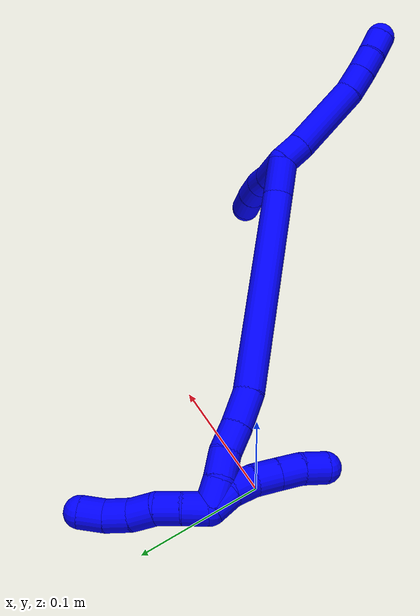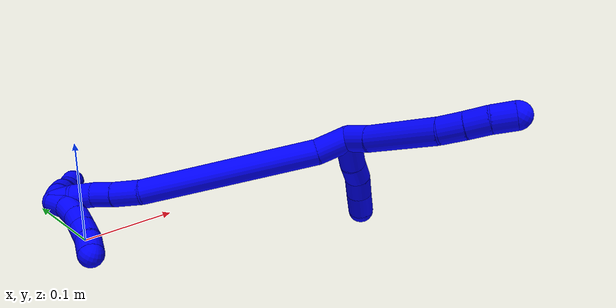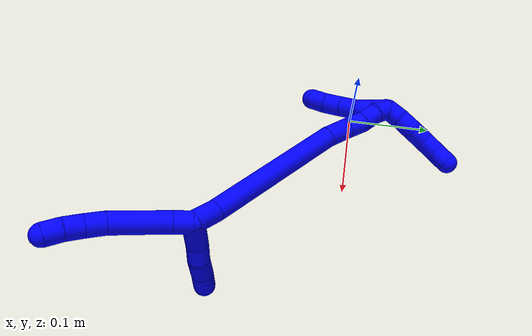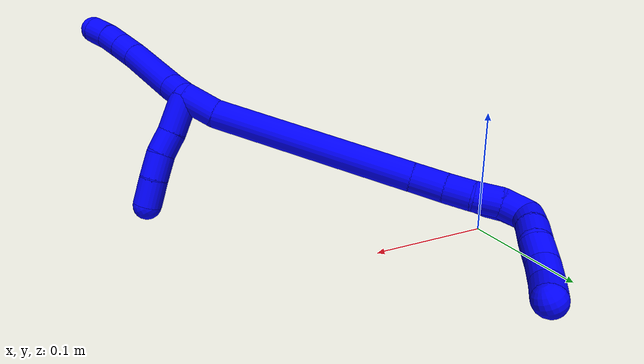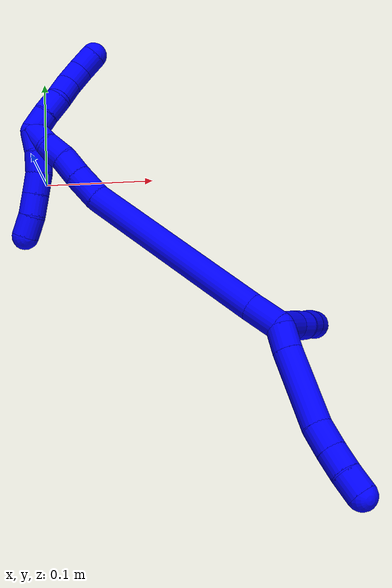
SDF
<sdf version="1.7">
 <world name="default">
  <model name="1">
   <static>0</static>
   <link name="1">
    <collision name="collision-cylinder-e_1_2_8">
     <pose>0.001305 -0.009234 0.005534 1.03089 0.120667 0.068418</pose>
     <geometry><cylinder><radius>0.0125</radius><length>0.021689</length></cylinder></geometry>
     <surface>
      <friction><ode><mu>1.16</mu><mu2>1.16</mu2><slip1>0</slip1><slip2>0</slip2></ode></friction>
      <contact><ode><kp>1e+06</kp><kd>1</kd><max_vel>0</max_vel><min_depth>0.001</min_depth></ode></contact>
     </surface>
    </collision>
    <visual name="visual-cylinder-e_1_2_8">
     <pose>0.001305 -0.009234 0.005534 1.03089 0.120667 0.068418</pose>
     <geometry><cylinder><radius>0.0125</radius><length>0.021689</length></cylinder></geometry>
     <material><ambient>0 0 1 1</ambient></material>
    </visual>
    <collision name="collision-cylinder-e_2_8_9">
     <pose>0.006985 -0.044337 0.031205 0.909339 0.132644 0.064912</pose>
     <geometry><cylinder><radius>0.0125</radius><length>0.066146</length></cylinder></geometry>
     <surface>
      <friction><ode><mu>1.16</mu><mu2>1.16</mu2><slip1>0</slip1><slip2>0</slip2></ode></friction>
      <contact><ode><kp>1e+06</kp><kd>1</kd><max_vel>0</max_vel><min_depth>0.001</min_depth></ode></contact>
     </surface>
    </collision>
    <visual name="visual-cylinder-e_2_8_9">
     <pose>0.006985 -0.044337 0.031205 0.909339 0.132644 0.064912</pose>
     <geometry><cylinder><radius>0.0125</radius><length>0.066146</length></cylinder></geometry>
     <material><ambient>0 0 1 1</ambient></material>
    </visual>
    <collision name="collision-cylinder-e_3_9_10">
     <pose>0.013999 -0.077799 0.058963 0.783666 0.240669 0.099844</pose>
     <geometry><cylinder><radius>0.0125</radius><length>0.022154</length></cylinder></geometry>
     <surface>
      <friction><ode><mu>1.16</mu><mu2>1.16</mu2><slip1>0</slip1><slip2>0</slip2></ode></friction>
      <contact><ode><kp>1e+06</kp><kd>1</kd><max_vel>0</max_vel><min_depth>0.001</min_depth></ode></contact>
     </surface>
    </collision>
    <visual name="visual-cylinder-e_3_9_10">
     <pose>0.013999 -0.077799 0.058963 0.783666 0.240669 0.099844</pose>
     <geometry><cylinder><radius>0.0125</radius><length>0.022154</length></cylinder></geometry>
     <material><ambient>0 0 1 1</ambient></material>
    </visual>
    <collision name="collision-cylinder-e_4_10_11">
     <pose>0.019254 -0.091938 0.073684 0.744673 0.264354 0.103757</pose>
     <geometry><cylinder><radius>0.0125</radius><length>0.02001</length></cylinder></geometry>
     <surface>
      <friction><ode><mu>1.16</mu><mu2>1.16</mu2><slip1>0</slip1><slip2>0</slip2></ode></friction>
      <contact><ode><kp>1e+06</kp><kd>1</kd><max_vel>0</max_vel><min_depth>0.001</min_depth></ode></contact>
     </surface>
    </collision>
    <visual name="visual-cylinder-e_4_10_11">
     <pose>0.019254 -0.091938 0.073684 0.744673 0.264354 0.103757</pose>
     <geometry><cylinder><radius>0.0125</radius><length>0.02001</length></cylinder></geometry>
     <material><ambient>0 0 1 1</ambient></material>
    </visual>
    <collision name="collision-cylinder-e_5_11_6">
     <pose>0.025584 -0.105127 0.087271 0.797461 0.380741 0.162016</pose>
     <geometry><cylinder><radius>0.0125</radius><length>0.020001</length></cylinder></geometry>
     <surface>
      <friction><ode><mu>1.16</mu><mu2>1.16</mu2><slip1>0</slip1><slip2>0</slip2></ode></friction>
      <contact><ode><kp>1e+06</kp><kd>1</kd><max_vel>0</max_vel><min_depth>0.001</min_depth></ode></contact>
     </surface>
    </collision>
    <visual name="visual-cylinder-e_5_11_6">
     <pose>0.025584 -0.105127 0.087271 0.797461 0.380741 0.162016</pose>
     <geometry><cylinder><radius>0.0125</radius><length>0.020001</length></cylinder></geometry>
     <material><ambient>0 0 1 1</ambient></material>
    </visual>
    <collision name="collision-cylinder-e_1_2_12">
     <pose>0.012089 -0.001299 -0.011102 3.02511 0.824532 2.87649</pose>
     <geometry><cylinder><radius>0.0125</radius><length>0.03293</length></cylinder></geometry>
     <surface>
      <friction><ode><mu>1.16</mu><mu2>1.16</mu2><slip1>0</slip1><slip2>0</slip2></ode></friction>
      <contact><ode><kp>1e+06</kp><kd>1</kd><max_vel>0</max_vel><min_depth>0.001</min_depth></ode></contact>
     </surface>
    </collision>
    <visual name="visual-cylinder-e_1_2_12">
     <pose>0.012089 -0.001299 -0.011102 3.02511 0.824532 2.87649</pose>
     <geometry><cylinder><radius>0.0125</radius><length>0.03293</length></cylinder></geometry>
     <material><ambient>0 0 1 1</ambient></material>
    </visual>
    <collision name="collision-cylinder-e_2_12_13">
     <pose>0.032558 -0.003347 -0.028069 3.01454 0.956394 2.89736</pose>
     <geometry><cylinder><radius>0.0125</radius><length>0.020511</length></cylinder></geometry>
     <surface>
      <friction><ode><mu>1.16</mu><mu2>1.16</mu2><slip1>0</slip1><slip2>0</slip2></ode></friction>
      <contact><ode><kp>1e+06</kp><kd>1</kd><max_vel>0</max_vel><min_depth>0.001</min_depth></ode></contact>
     </surface>
    </collision>
    <visual name="visual-cylinder-e_2_12_13">
     <pose>0.032558 -0.003347 -0.028069 3.01454 0.956394 2.89736</pose>
     <geometry><cylinder><radius>0.0125</radius><length>0.020511</length></cylinder></geometry>
     <material><ambient>0 0 1 1</ambient></material>
    </visual>
    <collision name="collision-cylinder-e_3_13_14">
     <pose>0.048721 -0.004708 -0.042088 3.0667 0.760684 2.95472</pose>
     <geometry><cylinder><radius>0.0125</radius><length>0.022579</length></cylinder></geometry>
     <surface>
      <friction><ode><mu>1.16</mu><mu2>1.16</mu2><slip1>0</slip1><slip2>0</slip2></ode></friction>
      <contact><ode><kp>1e+06</kp><kd>1</kd><max_vel>0</max_vel><min_depth>0.001</min_depth></ode></contact>
     </surface>
    </collision>
    <visual name="visual-cylinder-e_3_13_14">
     <pose>0.048721 -0.004708 -0.042088 3.0667 0.760684 2.95472</pose>
     <geometry><cylinder><radius>0.0125</radius><length>0.022579</length></cylinder></geometry>
     <material><ambient>0 0 1 1</ambient></material>
    </visual>
    <collision name="collision-cylinder-e_4_14_5">
     <pose>0.064304 -0.007004 -0.059192 2.95567 0.708294 2.64759</pose>
     <geometry><cylinder><radius>0.0125</radius><length>0.02398</length></cylinder></geometry>
     <surface>
      <friction><ode><mu>1.16</mu><mu2>1.16</mu2><slip1>0</slip1><slip2>0</slip2></ode></friction>
      <contact><ode><kp>1e+06</kp><kd>1</kd><max_vel>0</max_vel><min_depth>0.001</min_depth></ode></contact>
     </surface>
    </collision>
    <visual name="visual-cylinder-e_4_14_5">
     <pose>0.064304 -0.007004 -0.059192 2.95567 0.708294 2.64759</pose>
     <geometry><cylinder><radius>0.0125</radius><length>0.02398</length></cylinder></geometry>
     <material><ambient>0 0 1 1</ambient></material>
    </visual>
    <collision name="collision-cylinder-e_1_2_15">
     <pose>-0.007276 0.005912 -0.012429 -2.69764 -0.486306 1.66515</pose>
     <geometry><cylinder><radius>0.0125</radius><length>0.031137</length></cylinder></geometry>
     <surface>
      <friction><ode><mu>1.16</mu><mu2>1.16</mu2><slip1>0</slip1><slip2>0</slip2></ode></friction>
      <contact><ode><kp>1e+06</kp><kd>1</kd><max_vel>0</max_vel><min_depth>0.001</min_depth></ode></contact>
     </surface>
    </collision>
    <visual name="visual-cylinder-e_1_2_15">
     <pose>-0.007276 0.005912 -0.012429 -2.69764 -0.486306 1.66515</pose>
     <geometry><cylinder><radius>0.0125</radius><length>0.031137</length></cylinder></geometry>
     <material><ambient>0 0 1 1</ambient></material>
    </visual>
    <collision name="collision-cylinder-e_2_15_16">
     <pose>-0.066562 0.051884 -0.082434 -2.53369 -0.638038 1.62243</pose>
     <geometry><cylinder><radius>0.0125</radius><length>0.17464</length></cylinder></geometry>
     <surface>
      <friction><ode><mu>1.16</mu><mu2>1.16</mu2><slip1>0</slip1><slip2>0</slip2></ode></friction>
      <contact><ode><kp>1e+06</kp><kd>1</kd><max_vel>0</max_vel><min_depth>0.001</min_depth></ode></contact>
     </surface>
    </collision>
    <visual name="visual-cylinder-e_2_15_16">
     <pose>-0.066562 0.051884 -0.082434 -2.53369 -0.638038 1.62243</pose>
     <geometry><cylinder><radius>0.0125</radius><length>0.17464</length></cylinder></geometry>
     <material><ambient>0 0 1 1</ambient></material>
    </visual>
    <collision name="collision-cylinder-e_3_16_17">
     <pose>-0.12596 0.10092 -0.148532 -2.33034 -0.538194 1.14175</pose>
     <geometry><cylinder><radius>0.0125</radius><length>0.028827</length></cylinder></geometry>
     <surface>
      <friction><ode><mu>1.16</mu><mu2>1.16</mu2><slip1>0</slip1><slip2>0</slip2></ode></friction>
      <contact><ode><kp>1e+06</kp><kd>1</kd><max_vel>0</max_vel><min_depth>0.001</min_depth></ode></contact>
     </surface>
    </collision>
    <visual name="visual-cylinder-e_3_16_17">
     <pose>-0.12596 0.10092 -0.148532 -2.33034 -0.538194 1.14175</pose>
     <geometry><cylinder><radius>0.0125</radius><length>0.028827</length></cylinder></geometry>
     <material><ambient>0 0 1 1</ambient></material>
    </visual>
    <collision name="collision-cylinder-e_4_17_18">
     <pose>-0.138856 0.117462 -0.163111 -2.24582 -0.516686 1.00568</pose>
     <geometry><cylinder><radius>0.0125</radius><length>0.022298</length></cylinder></geometry>
     <surface>
      <friction><ode><mu>1.16</mu><mu2>1.16</mu2><slip1>0</slip1><slip2>0</slip2></ode></friction>
      <contact><ode><kp>1e+06</kp><kd>1</kd><max_vel>0</max_vel><min_depth>0.001</min_depth></ode></contact>
     </surface>
    </collision>
    <visual name="visual-cylinder-e_4_17_18">
     <pose>-0.138856 0.117462 -0.163111 -2.24582 -0.516686 1.00568</pose>
     <geometry><cylinder><radius>0.0125</radius><length>0.022298</length></cylinder></geometry>
     <material><ambient>0 0 1 1</ambient></material>
    </visual>
    <collision name="collision-cylinder-e_5_18_19">
     <pose>-0.151127 0.130726 -0.175375 -2.399 -0.676491 1.46944</pose>
     <geometry><cylinder><radius>0.0125</radius><length>0.021605</length></cylinder></geometry>
     <surface>
      <friction><ode><mu>1.16</mu><mu2>1.16</mu2><slip1>0</slip1><slip2>0</slip2></ode></friction>
      <contact><ode><kp>1e+06</kp><kd>1</kd><max_vel>0</max_vel><min_depth>0.001</min_depth></ode></contact>
     </surface>
    </collision>
    <visual name="visual-cylinder-e_5_18_19">
     <pose>-0.151127 0.130726 -0.175375 -2.399 -0.676491 1.46944</pose>
     <geometry><cylinder><radius>0.0125</radius><length>0.021605</length></cylinder></geometry>
     <material><ambient>0 0 1 1</ambient></material>
    </visual>
    <collision name="collision-cylinder-e_6_19_1">
     <pose>-0.162502 0.142322 -0.189287 -2.48818 -0.443641 1.1745</pose>
     <geometry><cylinder><radius>0.0125</radius><length>0.021491</length></cylinder></geometry>
     <surface>
      <friction><ode><mu>1.16</mu><mu2>1.16</mu2><slip1>0</slip1><slip2>0</slip2></ode></friction>
      <contact><ode><kp>1e+06</kp><kd>1</kd><max_vel>0</max_vel><min_depth>0.001</min_depth></ode></contact>
     </surface>
    </collision>
    <visual name="visual-cylinder-e_6_19_1">
     <pose>-0.162502 0.142322 -0.189287 -2.48818 -0.443641 1.1745</pose>
     <geometry><cylinder><radius>0.0125</radius><length>0.021491</length></cylinder></geometry>
     <material><ambient>0 0 1 1</ambient></material>
    </visual>
    <collision name="collision-cylinder-e_1_1_20">
     <pose>-0.161843 0.156694 -0.197657 -1.64896 0.555214 -0.597847</pose>
     <geometry><cylinder><radius>0.0125</radius><length>0.02</length></cylinder></geometry>
     <surface>
      <friction><ode><mu>1.16</mu><mu2>1.16</mu2><slip1>0</slip1><slip2>0</slip2></ode></friction>
      <contact><ode><kp>1e+06</kp><kd>1</kd><max_vel>0</max_vel><min_depth>0.001</min_depth></ode></contact>
     </surface>
    </collision>
    <visual name="visual-cylinder-e_1_1_20">
     <pose>-0.161843 0.156694 -0.197657 -1.64896 0.555214 -0.597847</pose>
     <geometry><cylinder><radius>0.0125</radius><length>0.02</length></cylinder></geometry>
     <material><ambient>0 0 1 1</ambient></material>
    </visual>
    <collision name="collision-cylinder-e_2_20_21">
     <pose>-0.150631 0.173059 -0.199869 -1.76451 0.636236 -0.761319</pose>
     <geometry><cylinder><radius>0.0125</radius><length>0.02</length></cylinder></geometry>
     <surface>
      <friction><ode><mu>1.16</mu><mu2>1.16</mu2><slip1>0</slip1><slip2>0</slip2></ode></friction>
      <contact><ode><kp>1e+06</kp><kd>1</kd><max_vel>0</max_vel><min_depth>0.001</min_depth></ode></contact>
     </surface>
    </collision>
    <visual name="visual-cylinder-e_2_20_21">
     <pose>-0.150631 0.173059 -0.199869 -1.76451 0.636236 -0.761319</pose>
     <geometry><cylinder><radius>0.0125</radius><length>0.02</length></cylinder></geometry>
     <material><ambient>0 0 1 1</ambient></material>
    </visual>
    <collision name="collision-cylinder-e_3_21_22">
     <pose>-0.139245 0.188147 -0.20573 -2.11078 0.575683 -0.963192</pose>
     <geometry><cylinder><radius>0.0125</radius><length>0.02</length></cylinder></geometry>
     <surface>
      <friction><ode><mu>1.16</mu><mu2>1.16</mu2><slip1>0</slip1><slip2>0</slip2></ode></friction>
      <contact><ode><kp>1e+06</kp><kd>1</kd><max_vel>0</max_vel><min_depth>0.001</min_depth></ode></contact>
     </surface>
    </collision>
    <visual name="visual-cylinder-e_3_21_22">
     <pose>-0.139245 0.188147 -0.20573 -2.11078 0.575683 -0.963192</pose>
     <geometry><cylinder><radius>0.0125</radius><length>0.02</length></cylinder></geometry>
     <material><ambient>0 0 1 1</ambient></material>
    </visual>
    <collision name="collision-cylinder-e_4_22_23">
     <pose>-0.127746 0.203018 -0.212142 -1.8378 0.650365 -0.831959</pose>
     <geometry><cylinder><radius>0.0125</radius><length>0.02</length></cylinder></geometry>
     <surface>
      <friction><ode><mu>1.16</mu><mu2>1.16</mu2><slip1>0</slip1><slip2>0</slip2></ode></friction>
      <contact><ode><kp>1e+06</kp><kd>1</kd><max_vel>0</max_vel><min_depth>0.001</min_depth></ode></contact>
     </surface>
    </collision>
    <visual name="visual-cylinder-e_4_22_23">
     <pose>-0.127746 0.203018 -0.212142 -1.8378 0.650365 -0.831959</pose>
     <geometry><cylinder><radius>0.0125</radius><length>0.02</length></cylinder></geometry>
     <material><ambient>0 0 1 1</ambient></material>
    </visual>
    <collision name="collision-cylinder-e_5_23_4">
     <pose>-0.11552 0.218563 -0.214167 -1.56132 0.665042 -0.659217</pose>
     <geometry><cylinder><radius>0.0125</radius><length>0.02</length></cylinder></geometry>
     <surface>
      <friction><ode><mu>1.16</mu><mu2>1.16</mu2><slip1>0</slip1><slip2>0</slip2></ode></friction>
      <contact><ode><kp>1e+06</kp><kd>1</kd><max_vel>0</max_vel><min_depth>0.001</min_depth></ode></contact>
     </surface>
    </collision>
    <visual name="visual-cylinder-e_5_23_4">
     <pose>-0.11552 0.218563 -0.214167 -1.56132 0.665042 -0.659217</pose>
     <geometry><cylinder><radius>0.0125</radius><length>0.02</length></cylinder></geometry>
     <material><ambient>0 0 1 1</ambient></material>
    </visual>
    <collision name="collision-cylinder-e_1_1_24">
     <pose>-0.165448 0.139135 -0.193167 1.17224 0.167486 0.111348</pose>
     <geometry><cylinder><radius>0.0125</radius><length>0.02</length></cylinder></geometry>
     <surface>
      <friction><ode><mu>1.16</mu><mu2>1.16</mu2><slip1>0</slip1><slip2>0</slip2></ode></friction>
      <contact><ode><kp>1e+06</kp><kd>1</kd><max_vel>0</max_vel><min_depth>0.001</min_depth></ode></contact>
     </surface>
    </collision>
    <visual name="visual-cylinder-e_1_1_24">
     <pose>-0.165448 0.139135 -0.193167 1.17224 0.167486 0.111348</pose>
     <geometry><cylinder><radius>0.0125</radius><length>0.02</length></cylinder></geometry>
     <material><ambient>0 0 1 1</ambient></material>
    </visual>
    <collision name="collision-cylinder-e_2_24_25">
     <pose>-0.162912 0.120144 -0.18826 1.46216 0.08694 0.077983</pose>
     <geometry><cylinder><radius>0.0125</radius><length>0.02</length></cylinder></geometry>
     <surface>
      <friction><ode><mu>1.16</mu><mu2>1.16</mu2><slip1>0</slip1><slip2>0</slip2></ode></friction>
      <contact><ode><kp>1e+06</kp><kd>1</kd><max_vel>0</max_vel><min_depth>0.001</min_depth></ode></contact>
     </surface>
    </collision>
    <visual name="visual-cylinder-e_2_24_25">
     <pose>-0.162912 0.120144 -0.18826 1.46216 0.08694 0.077983</pose>
     <geometry><cylinder><radius>0.0125</radius><length>0.02</length></cylinder></geometry>
     <material><ambient>0 0 1 1</ambient></material>
    </visual>
    <collision name="collision-cylinder-e_3_25_26">
     <pose>-0.163123 0.10031 -0.186717 1.52418 -0.10806 -0.103145</pose>
     <geometry><cylinder><radius>0.0125</radius><length>0.02</length></cylinder></geometry>
     <surface>
      <friction><ode><mu>1.16</mu><mu2>1.16</mu2><slip1>0</slip1><slip2>0</slip2></ode></friction>
      <contact><ode><kp>1e+06</kp><kd>1</kd><max_vel>0</max_vel><min_depth>0.001</min_depth></ode></contact>
     </surface>
    </collision>
    <visual name="visual-cylinder-e_3_25_26">
     <pose>-0.163123 0.10031 -0.186717 1.52418 -0.10806 -0.103145</pose>
     <geometry><cylinder><radius>0.0125</radius><length>0.02</length></cylinder></geometry>
     <material><ambient>0 0 1 1</ambient></material>
    </visual>
    <collision name="collision-cylinder-e_4_26_27">
     <pose>-0.165404 0.08046 -0.185838 1.52899 -0.12063 -0.115701</pose>
     <geometry><cylinder><radius>0.0125</radius><length>0.02</length></cylinder></geometry>
     <surface>
      <friction><ode><mu>1.16</mu><mu2>1.16</mu2><slip1>0</slip1><slip2>0</slip2></ode></friction>
      <contact><ode><kp>1e+06</kp><kd>1</kd><max_vel>0</max_vel><min_depth>0.001</min_depth></ode></contact>
     </surface>
    </collision>
    <visual name="visual-cylinder-e_4_26_27">
     <pose>-0.165404 0.08046 -0.185838 1.52899 -0.12063 -0.115701</pose>
     <geometry><cylinder><radius>0.0125</radius><length>0.02</length></cylinder></geometry>
     <material><ambient>0 0 1 1</ambient></material>
    </visual>
    <collision name="collision-cylinder-e_5_27_3">
     <pose>-0.168834 0.060847 -0.186454 1.67671 -0.224484 -0.249369</pose>
     <geometry><cylinder><radius>0.0125</radius><length>0.02</length></cylinder></geometry>
     <surface>
      <friction><ode><mu>1.16</mu><mu2>1.16</mu2><slip1>0</slip1><slip2>0</slip2></ode></friction>
      <contact><ode><kp>1e+06</kp><kd>1</kd><max_vel>0</max_vel><min_depth>0.001</min_depth></ode></contact>
     </surface>
    </collision>
    <visual name="visual-cylinder-e_5_27_3">
     <pose>-0.168834 0.060847 -0.186454 1.67671 -0.224484 -0.249369</pose>
     <geometry><cylinder><radius>0.0125</radius><length>0.02</length></cylinder></geometry>
     <material><ambient>0 0 1 1</ambient></material>
    </visual>
    <collision name="collision-sphere-3">
     <pose>-0.17106 0.051153 -0.187485 0 -0 0</pose>
     <geometry><sphere><radius>0.0125</radius></sphere></geometry>
     <surface>
      <friction><ode><mu>1.16</mu><mu2>1.16</mu2><slip1>0</slip1><slip2>0</slip2></ode></friction>
      <contact><ode><kp>1e+06</kp><kd>1</kd><max_vel>0</max_vel><min_depth>0.001</min_depth></ode></contact>
     </surface>
    </collision>
    <visual name="visual-sphere-3">
     <pose>-0.17106 0.051153 -0.187485 0 -0 0</pose>
     <geometry><sphere><radius>0.0125</radius></sphere></geometry>
     <material><ambient>0 0 1 1</ambient></material>
    </visual>
    <collision name="collision-sphere-27">
     <pose>-0.166608 0.070542 -0.185423 0 -0 0</pose>
     <geometry><sphere><radius>0.0125</radius></sphere></geometry>
     <surface>
      <friction><ode><mu>1.16</mu><mu2>1.16</mu2><slip1>0</slip1><slip2>0</slip2></ode></friction>
      <contact><ode><kp>1e+06</kp><kd>1</kd><max_vel>0</max_vel><min_depth>0.001</min_depth></ode></contact>
     </surface>
    </collision>
    <visual name="visual-sphere-27">
     <pose>-0.166608 0.070542 -0.185423 0 -0 0</pose>
     <geometry><sphere><radius>0.0125</radius></sphere></geometry>
     <material><ambient>0 0 1 1</ambient></material>
    </visual>
    <collision name="collision-sphere-26">
     <pose>-0.164201 0.090379 -0.186253 0 -0 0</pose>
     <geometry><sphere><radius>0.0125</radius></sphere></geometry>
     <surface>
      <friction><ode><mu>1.16</mu><mu2>1.16</mu2><slip1>0</slip1><slip2>0</slip2></ode></friction>
      <contact><ode><kp>1e+06</kp><kd>1</kd><max_vel>0</max_vel><min_depth>0.001</min_depth></ode></contact>
     </surface>
    </collision>
    <visual name="visual-sphere-26">
     <pose>-0.164201 0.090379 -0.186253 0 -0 0</pose>
     <geometry><sphere><radius>0.0125</radius></sphere></geometry>
     <material><ambient>0 0 1 1</ambient></material>
    </visual>
    <collision name="collision-sphere-25">
     <pose>-0.162044 0.110241 -0.18718 0 -0 0</pose>
     <geometry><sphere><radius>0.0125</radius></sphere></geometry>
     <surface>
      <friction><ode><mu>1.16</mu><mu2>1.16</mu2><slip1>0</slip1><slip2>0</slip2></ode></friction>
      <contact><ode><kp>1e+06</kp><kd>1</kd><max_vel>0</max_vel><min_depth>0.001</min_depth></ode></contact>
     </surface>
    </collision>
    <visual name="visual-sphere-25">
     <pose>-0.162044 0.110241 -0.18718 0 -0 0</pose>
     <geometry><sphere><radius>0.0125</radius></sphere></geometry>
     <material><ambient>0 0 1 1</ambient></material>
    </visual>
    <collision name="collision-sphere-24">
     <pose>-0.163781 0.130048 -0.18934 0 -0 0</pose>
     <geometry><sphere><radius>0.0125</radius></sphere></geometry>
     <surface>
      <friction><ode><mu>1.16</mu><mu2>1.16</mu2><slip1>0</slip1><slip2>0</slip2></ode></friction>
      <contact><ode><kp>1e+06</kp><kd>1</kd><max_vel>0</max_vel><min_depth>0.001</min_depth></ode></contact>
     </surface>
    </collision>
    <visual name="visual-sphere-24">
     <pose>-0.163781 0.130048 -0.18934 0 -0 0</pose>
     <geometry><sphere><radius>0.0125</radius></sphere></geometry>
     <material><ambient>0 0 1 1</ambient></material>
    </visual>
    <collision name="collision-sphere-4">
     <pose>-0.109349 0.226432 -0.214093 0 -0 0</pose>
     <geometry><sphere><radius>0.0125</radius></sphere></geometry>
     <surface>
      <friction><ode><mu>1.16</mu><mu2>1.16</mu2><slip1>0</slip1><slip2>0</slip2></ode></friction>
      <contact><ode><kp>1e+06</kp><kd>1</kd><max_vel>0</max_vel><min_depth>0.001</min_depth></ode></contact>
     </surface>
    </collision>
    <visual name="visual-sphere-4">
     <pose>-0.109349 0.226432 -0.214093 0 -0 0</pose>
     <geometry><sphere><radius>0.0125</radius></sphere></geometry>
     <material><ambient>0 0 1 1</ambient></material>
    </visual>
    <collision name="collision-sphere-23">
     <pose>-0.121691 0.210695 -0.214242 0 -0 0</pose>
     <geometry><sphere><radius>0.0125</radius></sphere></geometry>
     <surface>
      <friction><ode><mu>1.16</mu><mu2>1.16</mu2><slip1>0</slip1><slip2>0</slip2></ode></friction>
      <contact><ode><kp>1e+06</kp><kd>1</kd><max_vel>0</max_vel><min_depth>0.001</min_depth></ode></contact>
     </surface>
    </collision>
    <visual name="visual-sphere-23">
     <pose>-0.121691 0.210695 -0.214242 0 -0 0</pose>
     <geometry><sphere><radius>0.0125</radius></sphere></geometry>
     <material><ambient>0 0 1 1</ambient></material>
    </visual>
    <collision name="collision-sphere-22">
     <pose>-0.133801 0.195341 -0.210042 0 -0 0</pose>
     <geometry><sphere><radius>0.0125</radius></sphere></geometry>
     <surface>
      <friction><ode><mu>1.16</mu><mu2>1.16</mu2><slip1>0</slip1><slip2>0</slip2></ode></friction>
      <contact><ode><kp>1e+06</kp><kd>1</kd><max_vel>0</max_vel><min_depth>0.001</min_depth></ode></contact>
     </surface>
    </collision>
    <visual name="visual-sphere-22">
     <pose>-0.133801 0.195341 -0.210042 0 -0 0</pose>
     <geometry><sphere><radius>0.0125</radius></sphere></geometry>
     <material><ambient>0 0 1 1</ambient></material>
    </visual>
    <collision name="collision-sphere-21">
     <pose>-0.144689 0.180952 -0.201417 0 -0 0</pose>
     <geometry><sphere><radius>0.0125</radius></sphere></geometry>
     <surface>
      <friction><ode><mu>1.16</mu><mu2>1.16</mu2><slip1>0</slip1><slip2>0</slip2></ode></friction>
      <contact><ode><kp>1e+06</kp><kd>1</kd><max_vel>0</max_vel><min_depth>0.001</min_depth></ode></contact>
     </surface>
    </collision>
    <visual name="visual-sphere-21">
     <pose>-0.144689 0.180952 -0.201417 0 -0 0</pose>
     <geometry><sphere><radius>0.0125</radius></sphere></geometry>
     <material><ambient>0 0 1 1</ambient></material>
    </visual>
    <collision name="collision-sphere-20">
     <pose>-0.156572 0.165166 -0.198321 0 -0 0</pose>
     <geometry><sphere><radius>0.0125</radius></sphere></geometry>
     <surface>
      <friction><ode><mu>1.16</mu><mu2>1.16</mu2><slip1>0</slip1><slip2>0</slip2></ode></friction>
      <contact><ode><kp>1e+06</kp><kd>1</kd><max_vel>0</max_vel><min_depth>0.001</min_depth></ode></contact>
     </surface>
    </collision>
    <visual name="visual-sphere-20">
     <pose>-0.156572 0.165166 -0.198321 0 -0 0</pose>
     <geometry><sphere><radius>0.0125</radius></sphere></geometry>
     <material><ambient>0 0 1 1</ambient></material>
    </visual>
    <collision name="collision-sphere-6">
     <pose>0.0293 -0.111771 0.093756 0 -0 0</pose>
     <geometry><sphere><radius>0.0125</radius></sphere></geometry>
     <surface>
      <friction><ode><mu>1.16</mu><mu2>1.16</mu2><slip1>0</slip1><slip2>0</slip2></ode></friction>
      <contact><ode><kp>1e+06</kp><kd>1</kd><max_vel>0</max_vel><min_depth>0.001</min_depth></ode></contact>
     </surface>
    </collision>
    <visual name="visual-sphere-6">
     <pose>0.0293 -0.111771 0.093756 0 -0 0</pose>
     <geometry><sphere><radius>0.0125</radius></sphere></geometry>
     <material><ambient>0 0 1 1</ambient></material>
    </visual>
    <collision name="collision-sphere-11">
     <pose>0.021868 -0.098483 0.080785 0 -0 0</pose>
     <geometry><sphere><radius>0.0125</radius></sphere></geometry>
     <surface>
      <friction><ode><mu>1.16</mu><mu2>1.16</mu2><slip1>0</slip1><slip2>0</slip2></ode></friction>
      <contact><ode><kp>1e+06</kp><kd>1</kd><max_vel>0</max_vel><min_depth>0.001</min_depth></ode></contact>
     </surface>
    </collision>
    <visual name="visual-sphere-11">
     <pose>0.021868 -0.098483 0.080785 0 -0 0</pose>
     <geometry><sphere><radius>0.0125</radius></sphere></geometry>
     <material><ambient>0 0 1 1</ambient></material>
    </visual>
    <collision name="collision-sphere-10">
     <pose>0.016639 -0.085393 0.066583 0 -0 0</pose>
     <geometry><sphere><radius>0.0125</radius></sphere></geometry>
     <surface>
      <friction><ode><mu>1.16</mu><mu2>1.16</mu2><slip1>0</slip1><slip2>0</slip2></ode></friction>
      <contact><ode><kp>1e+06</kp><kd>1</kd><max_vel>0</max_vel><min_depth>0.001</min_depth></ode></contact>
     </surface>
    </collision>
    <visual name="visual-sphere-10">
     <pose>0.016639 -0.085393 0.066583 0 -0 0</pose>
     <geometry><sphere><radius>0.0125</radius></sphere></geometry>
     <material><ambient>0 0 1 1</ambient></material>
    </visual>
    <collision name="collision-sphere-9">
     <pose>0.011359 -0.070206 0.051342 0 -0 0</pose>
     <geometry><sphere><radius>0.0125</radius></sphere></geometry>
     <surface>
      <friction><ode><mu>1.16</mu><mu2>1.16</mu2><slip1>0</slip1><slip2>0</slip2></ode></friction>
      <contact><ode><kp>1e+06</kp><kd>1</kd><max_vel>0</max_vel><min_depth>0.001</min_depth></ode></contact>
     </surface>
    </collision>
    <visual name="visual-sphere-9">
     <pose>0.011359 -0.070206 0.051342 0 -0 0</pose>
     <geometry><sphere><radius>0.0125</radius></sphere></geometry>
     <material><ambient>0 0 1 1</ambient></material>
    </visual>
    <collision name="collision-sphere-2">
     <geometry><sphere><radius>0.0125</radius></sphere></geometry>
     <surface>
      <friction><ode><mu>1.16</mu><mu2>1.16</mu2><slip1>0</slip1><slip2>0</slip2></ode></friction>
      <contact><ode><kp>1e+06</kp><kd>1</kd><max_vel>0</max_vel><min_depth>0.001</min_depth></ode></contact>
     </surface>
    </collision>
    <visual name="visual-sphere-2">
     <geometry><sphere><radius>0.0125</radius></sphere></geometry>
     <material><ambient>0 0 1 1</ambient></material>
    </visual>
    <collision name="collision-sphere-19">
     <pose>-0.15789 0.136422 -0.181581 0 -0 0</pose>
     <geometry><sphere><radius>0.0125</radius></sphere></geometry>
     <surface>
      <friction><ode><mu>1.16</mu><mu2>1.16</mu2><slip1>0</slip1><slip2>0</slip2></ode></friction>
      <contact><ode><kp>1e+06</kp><kd>1</kd><max_vel>0</max_vel><min_depth>0.001</min_depth></ode></contact>
     </surface>
    </collision>
    <visual name="visual-sphere-19">
     <pose>-0.15789 0.136422 -0.181581 0 -0 0</pose>
     <geometry><sphere><radius>0.0125</radius></sphere></geometry>
     <material><ambient>0 0 1 1</ambient></material>
    </visual>
    <collision name="collision-sphere-8">
     <pose>0.002611 -0.018469 0.011068 0 -0 0</pose>
     <geometry><sphere><radius>0.0125</radius></sphere></geometry>
     <surface>
      <friction><ode><mu>1.16</mu><mu2>1.16</mu2><slip1>0</slip1><slip2>0</slip2></ode></friction>
      <contact><ode><kp>1e+06</kp><kd>1</kd><max_vel>0</max_vel><min_depth>0.001</min_depth></ode></contact>
     </surface>
    </collision>
    <visual name="visual-sphere-8">
     <pose>0.002611 -0.018469 0.011068 0 -0 0</pose>
     <geometry><sphere><radius>0.0125</radius></sphere></geometry>
     <material><ambient>0 0 1 1</ambient></material>
    </visual>
    <collision name="collision-sphere-12">
     <pose>0.024178 -0.002598 -0.022204 0 -0 0</pose>
     <geometry><sphere><radius>0.0125</radius></sphere></geometry>
     <surface>
      <friction><ode><mu>1.16</mu><mu2>1.16</mu2><slip1>0</slip1><slip2>0</slip2></ode></friction>
      <contact><ode><kp>1e+06</kp><kd>1</kd><max_vel>0</max_vel><min_depth>0.001</min_depth></ode></contact>
     </surface>
    </collision>
    <visual name="visual-sphere-12">
     <pose>0.024178 -0.002598 -0.022204 0 -0 0</pose>
     <geometry><sphere><radius>0.0125</radius></sphere></geometry>
     <material><ambient>0 0 1 1</ambient></material>
    </visual>
    <collision name="collision-sphere-13">
     <pose>0.040938 -0.004097 -0.033933 0 -0 0</pose>
     <geometry><sphere><radius>0.0125</radius></sphere></geometry>
     <surface>
      <friction><ode><mu>1.16</mu><mu2>1.16</mu2><slip1>0</slip1><slip2>0</slip2></ode></friction>
      <contact><ode><kp>1e+06</kp><kd>1</kd><max_vel>0</max_vel><min_depth>0.001</min_depth></ode></contact>
     </surface>
    </collision>
    <visual name="visual-sphere-13">
     <pose>0.040938 -0.004097 -0.033933 0 -0 0</pose>
     <geometry><sphere><radius>0.0125</radius></sphere></geometry>
     <material><ambient>0 0 1 1</ambient></material>
    </visual>
    <collision name="collision-sphere-14">
     <pose>0.056504 -0.00532 -0.050243 0 -0 0</pose>
     <geometry><sphere><radius>0.0125</radius></sphere></geometry>
     <surface>
      <friction><ode><mu>1.16</mu><mu2>1.16</mu2><slip1>0</slip1><slip2>0</slip2></ode></friction>
      <contact><ode><kp>1e+06</kp><kd>1</kd><max_vel>0</max_vel><min_depth>0.001</min_depth></ode></contact>
     </surface>
    </collision>
    <visual name="visual-sphere-14">
     <pose>0.056504 -0.00532 -0.050243 0 -0 0</pose>
     <geometry><sphere><radius>0.0125</radius></sphere></geometry>
     <material><ambient>0 0 1 1</ambient></material>
    </visual>
    <collision name="collision-sphere-5">
     <pose>0.072104 -0.008687 -0.068141 0 -0 0</pose>
     <geometry><sphere><radius>0.0125</radius></sphere></geometry>
     <surface>
      <friction><ode><mu>1.16</mu><mu2>1.16</mu2><slip1>0</slip1><slip2>0</slip2></ode></friction>
      <contact><ode><kp>1e+06</kp><kd>1</kd><max_vel>0</max_vel><min_depth>0.001</min_depth></ode></contact>
     </surface>
    </collision>
    <visual name="visual-sphere-5">
     <pose>0.072104 -0.008687 -0.068141 0 -0 0</pose>
     <geometry><sphere><radius>0.0125</radius></sphere></geometry>
     <material><ambient>0 0 1 1</ambient></material>
    </visual>
    <collision name="collision-sphere-15">
     <pose>-0.014552 0.011823 -0.024859 0 -0 0</pose>
     <geometry><sphere><radius>0.0125</radius></sphere></geometry>
     <surface>
      <friction><ode><mu>1.16</mu><mu2>1.16</mu2><slip1>0</slip1><slip2>0</slip2></ode></friction>
      <contact><ode><kp>1e+06</kp><kd>1</kd><max_vel>0</max_vel><min_depth>0.001</min_depth></ode></contact>
     </surface>
    </collision>
    <visual name="visual-sphere-15">
     <pose>-0.014552 0.011823 -0.024859 0 -0 0</pose>
     <geometry><sphere><radius>0.0125</radius></sphere></geometry>
     <material><ambient>0 0 1 1</ambient></material>
    </visual>
    <collision name="collision-sphere-16">
     <pose>-0.118572 0.091946 -0.14001 0 -0 0</pose>
     <geometry><sphere><radius>0.0125</radius></sphere></geometry>
     <surface>
      <friction><ode><mu>1.16</mu><mu2>1.16</mu2><slip1>0</slip1><slip2>0</slip2></ode></friction>
      <contact><ode><kp>1e+06</kp><kd>1</kd><max_vel>0</max_vel><min_depth>0.001</min_depth></ode></contact>
     </surface>
    </collision>
    <visual name="visual-sphere-16">
     <pose>-0.118572 0.091946 -0.14001 0 -0 0</pose>
     <geometry><sphere><radius>0.0125</radius></sphere></geometry>
     <material><ambient>0 0 1 1</ambient></material>
    </visual>
    <collision name="collision-sphere-17">
     <pose>-0.133348 0.109894 -0.157054 0 -0 0</pose>
     <geometry><sphere><radius>0.0125</radius></sphere></geometry>
     <surface>
      <friction><ode><mu>1.16</mu><mu2>1.16</mu2><slip1>0</slip1><slip2>0</slip2></ode></friction>
      <contact><ode><kp>1e+06</kp><kd>1</kd><max_vel>0</max_vel><min_depth>0.001</min_depth></ode></contact>
     </surface>
    </collision>
    <visual name="visual-sphere-17">
     <pose>-0.133348 0.109894 -0.157054 0 -0 0</pose>
     <geometry><sphere><radius>0.0125</radius></sphere></geometry>
     <material><ambient>0 0 1 1</ambient></material>
    </visual>
    <collision name="collision-sphere-18">
     <pose>-0.144364 0.12503 -0.169169 0 -0 0</pose>
     <geometry><sphere><radius>0.0125</radius></sphere></geometry>
     <surface>
      <friction><ode><mu>1.16</mu><mu2>1.16</mu2><slip1>0</slip1><slip2>0</slip2></ode></friction>
      <contact><ode><kp>1e+06</kp><kd>1</kd><max_vel>0</max_vel><min_depth>0.001</min_depth></ode></contact>
     </surface>
    </collision>
    <visual name="visual-sphere-18">
     <pose>-0.144364 0.12503 -0.169169 0 -0 0</pose>
     <geometry><sphere><radius>0.0125</radius></sphere></geometry>
     <material><ambient>0 0 1 1</ambient></material>
    </visual>
    <collision name="collision-sphere-1">
     <pose>-0.167115 0.148222 -0.196993 0 -0 0</pose>
     <geometry><sphere><radius>0.0125</radius></sphere></geometry>
     <surface>
      <friction><ode><mu>1.16</mu><mu2>1.16</mu2><slip1>0</slip1><slip2>0</slip2></ode></friction>
      <contact><ode><kp>1e+06</kp><kd>1</kd><max_vel>0</max_vel><min_depth>0.001</min_depth></ode></contact>
     </surface>
    </collision>
    <visual name="visual-sphere-1">
     <pose>-0.167115 0.148222 -0.196993 0 -0 0</pose>
     <geometry><sphere><radius>0.0125</radius></sphere></geometry>
     <material><ambient>0 0 1 1</ambient></material>
    </visual>
    <inertial>
     <pose>-0.067126 0.053706 -0.088747 0 -0 0</pose>
     <mass>0.75</mass>
     <inertia>
      <ixx>0.000391</ixx>
      <ixy>0</ixy>
      <ixz>0</ixz>
      <iyy>0.000579</iyy>
      <iyz>0</iyz>
      <izz>5.9e-05</izz>
     </inertia>
    </inertial>
   </link>
   <pose>0.200525 -0.156029 0.101109 0.290104 0.385666 -0.009926</pose>
  </model>
 </world>
</sdf>
